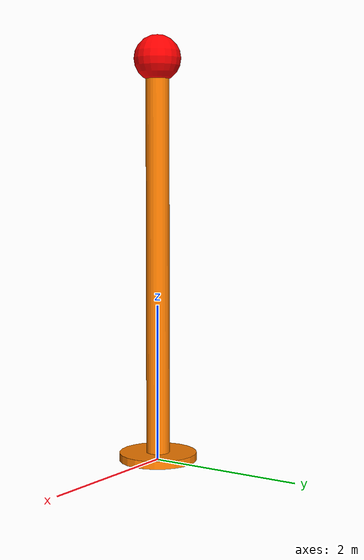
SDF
<?xml version="1.0" encoding="UTF-8"?>
<sdf version='1.9'>
  <model name='teknofest_boundary_marker'>
    <static>true</static>
    <link name='link'>
      <!-- Tall orange pole: 5m high, 0.15m radius -->
      <visual name='pole'>
        <pose>0 0 2.5 0 0 0</pose>
        <geometry>
          <cylinder><radius>0.15</radius><length>5</length></cylinder>
        </geometry>
        <material>
          <ambient>1 0.5 0 1</ambient>
          <diffuse>1 0.5 0 1</diffuse>
        </material>
      </visual>
      <!-- Base plate for visibility -->
      <visual name='base'>
        <pose>0 0 0.05 0 0 0</pose>
        <geometry>
          <cylinder><radius>0.5</radius><length>0.1</length></cylinder>
        </geometry>
        <material>
          <ambient>1 0.5 0 1</ambient>
          <diffuse>1 0.5 0 1</diffuse>
        </material>
      </visual>
      <!-- Top sphere -->
      <visual name='top_ball'>
        <pose>0 0 5.15 0 0 0</pose>
        <geometry>
          <sphere><radius>0.3</radius></sphere>
        </geometry>
        <material>
          <ambient>1 0 0 1</ambient>
          <diffuse>1 0 0 1</diffuse>
        </material>
      </visual>
      <collision name='pole_collision'>
        <pose>0 0 2.5 0 0 0</pose>
        <geometry>
          <cylinder><radius>0.15</radius><length>5</length></cylinder>
        </geometry>
      </collision>
    </link>
  </model>
</sdf>
